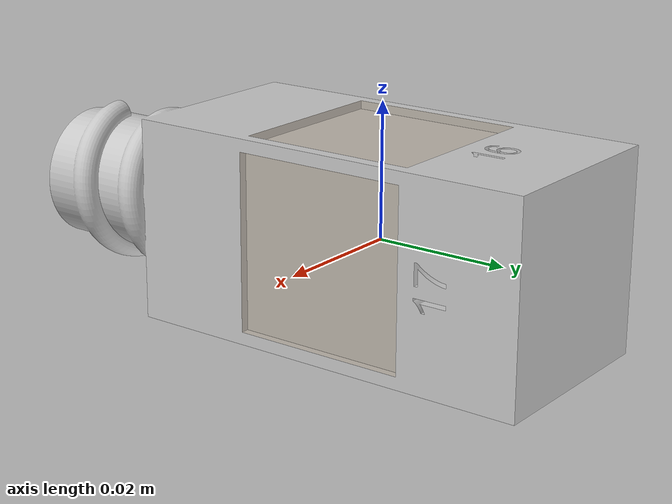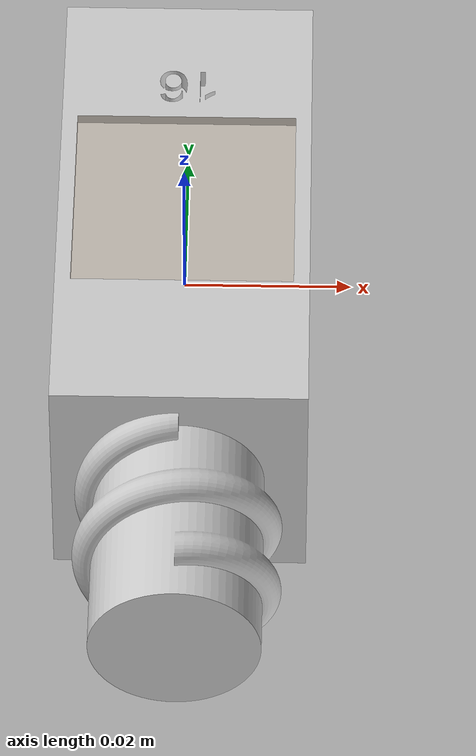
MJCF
<mujoco model="square_table_leg3">
  <default>
    <default class="visual">
      <geom group="2" type="mesh" contype="0" conaffinity="0"/>
    </default>
    <default class="collision">
      <geom group="3" type="mesh"/>
    </default>
  </default>
  <asset>
    <texture type="2d" name="tag36_11_00016" file="tag36_11_00016.png"/>
    <material name="Material.001" texture="tag36_11_00016" specular="0.5" shininess="0.25"/>
    <texture type="2d" name="tag36_11_00017" file="tag36_11_00017.png"/>
    <material name="Material.002" texture="tag36_11_00017" specular="0.5" shininess="0.25"/>
    <texture type="2d" name="tag36_11_00018" file="tag36_11_00018.png"/>
    <material name="Material.003" texture="tag36_11_00018" specular="0.5" shininess="0.25"/>
    <texture type="2d" name="tag36_11_00019" file="tag36_11_00019.png"/>
    <material name="Material.004" texture="tag36_11_00019" specular="0.5" shininess="0.25"/>
    <material name="Material.005" specular="0.5" shininess="0.25" rgba="0.800000 0.800000 0.800000 1.000000"/>
    <mesh file="square_table_leg3_0.obj"/>
    <mesh file="square_table_leg3_1.obj"/>
    <mesh file="square_table_leg3_2.obj"/>
    <mesh file="square_table_leg3_3.obj"/>
    <mesh file="square_table_leg3_4.obj"/>
  </asset>
  <worldbody>
    <body name="square_table_leg3">
      <freejoint/>
      <geom mesh="square_table_leg3_0" material="Material.004" class="visual"/>
      <geom mesh="square_table_leg3_1" material="Material.003" class="visual"/>
      <geom mesh="square_table_leg3_2" material="Material.002" class="visual"/>
      <geom mesh="square_table_leg3_3" material="Material.001" class="visual"/>
      <geom mesh="square_table_leg3_4" material="Material.005" class="visual"/>
      <geom mesh="square_table_leg3_0" class="collision"/>
      <geom mesh="square_table_leg3_1" class="collision"/>
      <geom mesh="square_table_leg3_2" class="collision"/>
      <geom mesh="square_table_leg3_3" class="collision"/>
      <geom mesh="square_table_leg3_4" class="collision"/>
    </body>
  </worldbody>
</mujoco>
